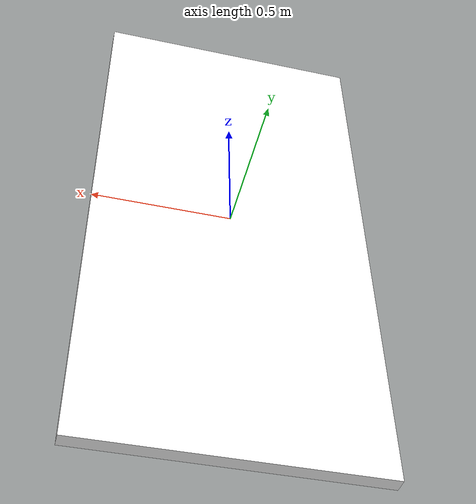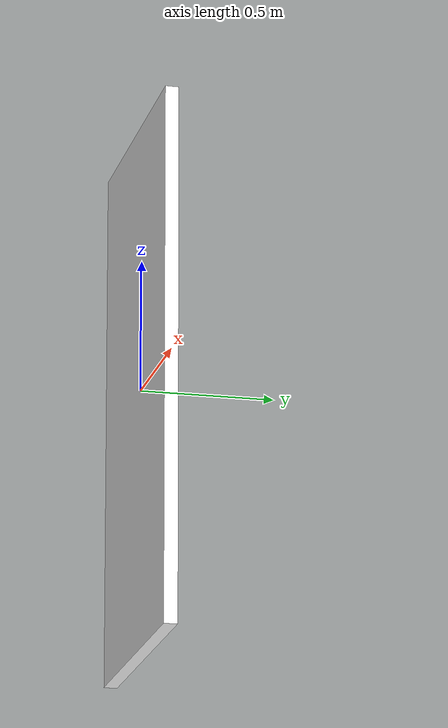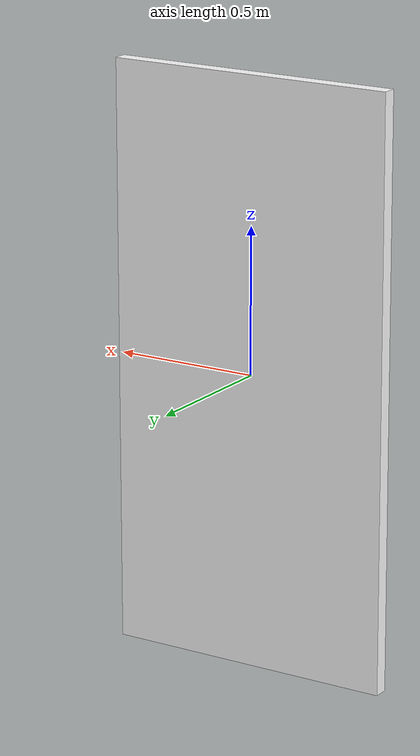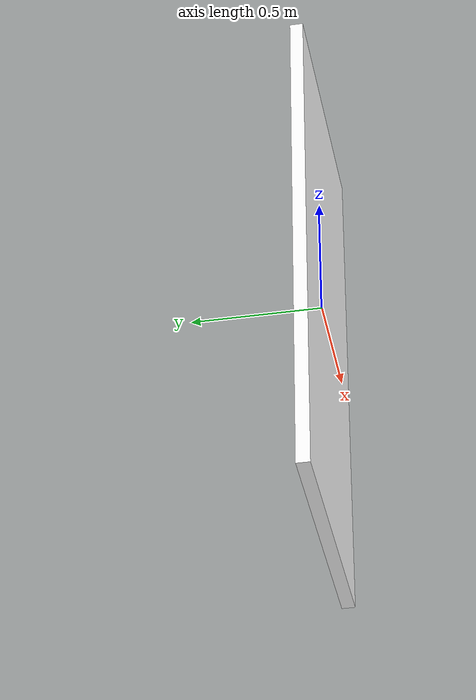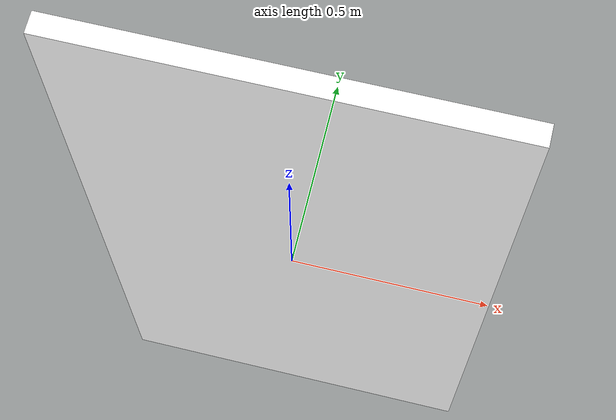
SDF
<?xml version="1.0" ?>
<sdf version="1.6">
  <model name="fire_model2">
    <static>true</static>

    <link name="link">
      <!-- 충돌(물리) 박스 -->
      <collision name="collision">
        <geometry>
          <box>
            <!-- X=가로, Y=두께, Z=세로(높이) -->
            <size>1.0 0.05 2.0</size>
          </box>
        </geometry>
        <surface>
          <friction>
            <ode>
              <mu>1.2</mu>
              <mu2>1.2</mu2>
            </ode>
          </friction>
        </surface>
      </collision>

      <!-- 시각(렌더링) 박스 + 텍스처 머티리얼 -->
      <visual name="visual">
        <geometry>
          <box>
            <size>1.0 0.05 2.0</size>
          </box>
        </geometry>
        <material>
          <script>
            <uri>model://fire_model2/materials/scripts</uri>
            <uri>model://fire_model2/materials/textures</uri>
            <name>fire_model2/object</name>
          </script>
          <!-- 텍스처가 더 밝게 보이도록 기본값들 -->
          <ambient>1 1 1 1</ambient>
          <diffuse>1 1 1 1</diffuse>
          <specular>0 0 0 1</specular>
          <emissive>0 0 0 1</emissive>
        </material>
        <!-- 필요하면 회전/위치 조정 -->
      </visual>
    </link>
  </model>
</sdf>
